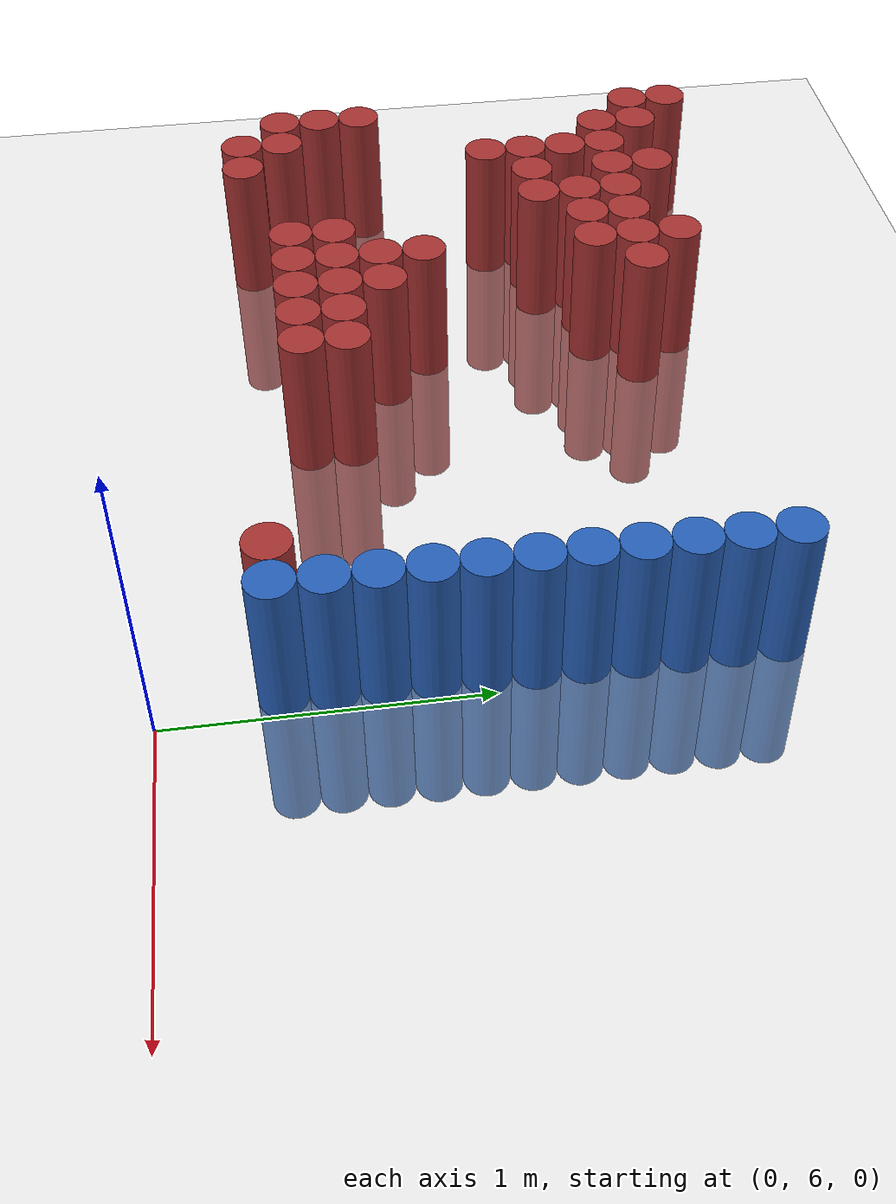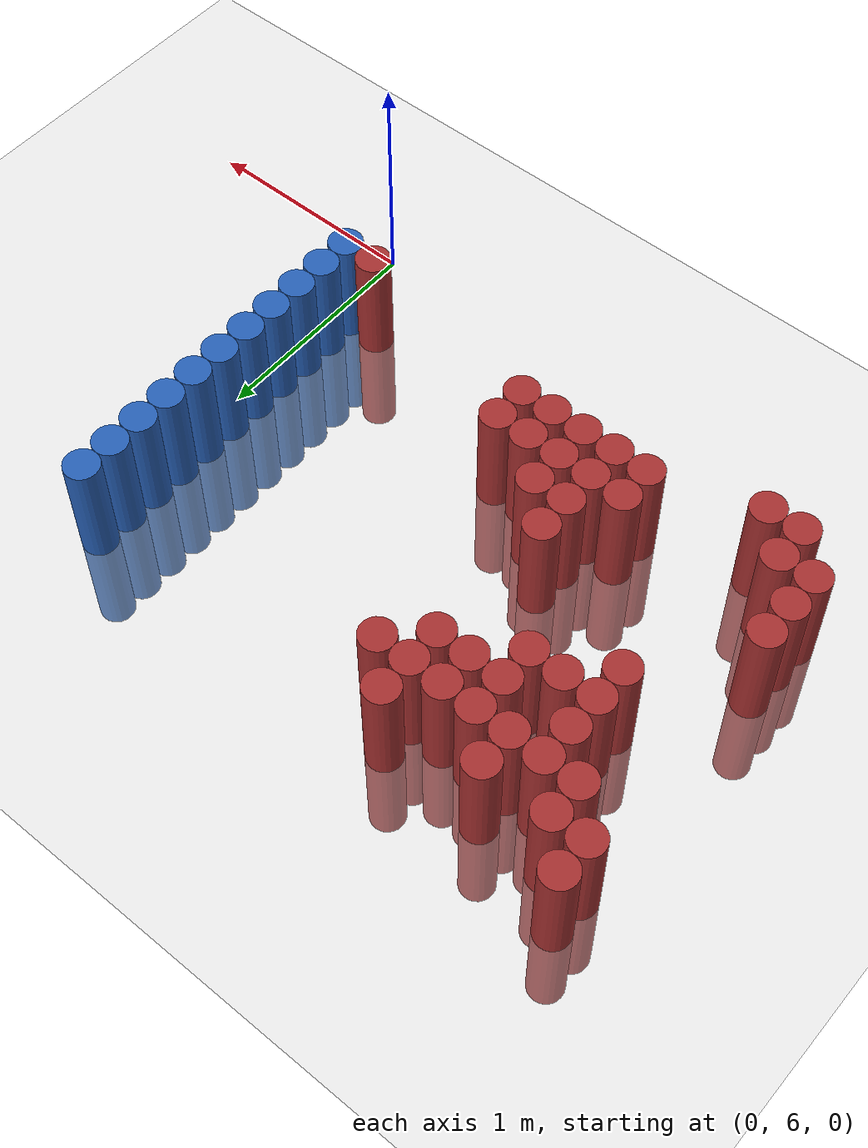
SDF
<sdf version="1.6">
 <world name="default">
  <model name="ground_plane">
   <static>1</static>
   <link name="link">
    <collision name="collision">
     <geometry><plane><normal>0 0 1</normal><size>100 100</size></plane></geometry>
     <surface><friction><ode><mu>100</mu><mu2>50</mu2></ode></friction></surface>
    </collision>
    <visual name="visual">
     <cast_shadows>0</cast_shadows>
     <geometry><plane><normal>0 0 1</normal><size>100 100</size></plane></geometry>
     <material>
      <script><uri>file://media/materials/scripts/gazebo.material</uri><name>Gazebo/Grey</name></script>
     </material>
    </visual>
   </link>
  </model>
  <model name="unit_cylinder_236">
   <static>1</static>
   <pose>-2.475000 6.525000 0.000000 0.000000 0.000000 0.000000</pose>
   <link name="link">
    <inertial>
     <mass>1</mass>
     <inertia><ixx>0.145833</ixx><ixy>0</ixy><ixz>0</ixz><iyy>0.145833</iyy><iyz>0</iyz><izz>0.125</izz></inertia>
    </inertial>
    <collision name="collision">
     <geometry><cylinder><radius>0.075000</radius><length>1</length></cylinder></geometry>
    </collision>
    <visual name="visual">
     <geometry><cylinder><radius>0.075000</radius><length>1</length></cylinder></geometry>
     <material>
      <ambient>0.648000 0.192000 0.192000 1</ambient>
      <diffuse>0.648000 0.192000 0.192000 1</diffuse>
     </material>
     <material>
      <script><name>Gazebo/Grey</name><uri>file://media/materials/scripts/gazebo.material</uri></script>
     </material>
    </visual>
   </link>
  </model>
  <model name="unit_cylinder_237">
   <static>1</static>
   <pose>-2.475000 6.675000 0.000000 0.000000 0.000000 0.000000</pose>
   <link name="link">
    <inertial>
     <mass>1</mass>
     <inertia><ixx>0.145833</ixx><ixy>0</ixy><ixz>0</ixz><iyy>0.145833</iyy><iyz>0</iyz><izz>0.125</izz></inertia>
    </inertial>
    <collision name="collision">
     <geometry><cylinder><radius>0.075000</radius><length>1</length></cylinder></geometry>
    </collision>
    <visual name="visual">
     <geometry><cylinder><radius>0.075000</radius><length>1</length></cylinder></geometry>
     <material>
      <ambient>0.648000 0.192000 0.192000 1</ambient>
      <diffuse>0.648000 0.192000 0.192000 1</diffuse>
     </material>
     <material>
      <script><name>Gazebo/Grey</name><uri>file://media/materials/scripts/gazebo.material</uri></script>
     </material>
    </visual>
   </link>
  </model>
  <model name="unit_cylinder_238">
   <static>1</static>
   <pose>-2.475000 6.825000 0.000000 0.000000 0.000000 0.000000</pose>
   <link name="link">
    <inertial>
     <mass>1</mass>
     <inertia><ixx>0.145833</ixx><ixy>0</ixy><ixz>0</ixz><iyy>0.145833</iyy><iyz>0</iyz><izz>0.125</izz></inertia>
    </inertial>
    <collision name="collision">
     <geometry><cylinder><radius>0.075000</radius><length>1</length></cylinder></geometry>
    </collision>
    <visual name="visual">
     <geometry><cylinder><radius>0.075000</radius><length>1</length></cylinder></geometry>
     <material>
      <ambient>0.648000 0.192000 0.192000 1</ambient>
      <diffuse>0.648000 0.192000 0.192000 1</diffuse>
     </material>
     <material>
      <script><name>Gazebo/Grey</name><uri>file://media/materials/scripts/gazebo.material</uri></script>
     </material>
    </visual>
   </link>
  </model>
  <model name="unit_cylinder_239">
   <static>1</static>
   <pose>-2.475000 7.875000 0.000000 0.000000 0.000000 0.000000</pose>
   <link name="link">
    <inertial>
     <mass>1</mass>
     <inertia><ixx>0.145833</ixx><ixy>0</ixy><ixz>0</ixz><iyy>0.145833</iyy><iyz>0</iyz><izz>0.125</izz></inertia>
    </inertial>
    <collision name="collision">
     <geometry><cylinder><radius>0.075000</radius><length>1</length></cylinder></geometry>
    </collision>
    <visual name="visual">
     <geometry><cylinder><radius>0.075000</radius><length>1</length></cylinder></geometry>
     <material>
      <ambient>0.648000 0.192000 0.192000 1</ambient>
      <diffuse>0.648000 0.192000 0.192000 1</diffuse>
     </material>
     <material>
      <script><name>Gazebo/Grey</name><uri>file://media/materials/scripts/gazebo.material</uri></script>
     </material>
    </visual>
   </link>
  </model>
  <model name="unit_cylinder_240">
   <static>1</static>
   <pose>-2.475000 8.025000 0.000000 0.000000 0.000000 0.000000</pose>
   <link name="link">
    <inertial>
     <mass>1</mass>
     <inertia><ixx>0.145833</ixx><ixy>0</ixy><ixz>0</ixz><iyy>0.145833</iyy><iyz>0</iyz><izz>0.125</izz></inertia>
    </inertial>
    <collision name="collision">
     <geometry><cylinder><radius>0.075000</radius><length>1</length></cylinder></geometry>
    </collision>
    <visual name="visual">
     <geometry><cylinder><radius>0.075000</radius><length>1</length></cylinder></geometry>
     <material>
      <ambient>0.648000 0.192000 0.192000 1</ambient>
      <diffuse>0.648000 0.192000 0.192000 1</diffuse>
     </material>
     <material>
      <script><name>Gazebo/Grey</name><uri>file://media/materials/scripts/gazebo.material</uri></script>
     </material>
    </visual>
   </link>
  </model>
  <model name="unit_cylinder_249">
   <static>1</static>
   <pose>-2.325000 6.375000 0.000000 0.000000 0.000000 0.000000</pose>
   <link name="link">
    <inertial>
     <mass>1</mass>
     <inertia><ixx>0.145833</ixx><ixy>0</ixy><ixz>0</ixz><iyy>0.145833</iyy><iyz>0</iyz><izz>0.125</izz></inertia>
    </inertial>
    <collision name="collision">
     <geometry><cylinder><radius>0.075000</radius><length>1</length></cylinder></geometry>
    </collision>
    <visual name="visual">
     <geometry><cylinder><radius>0.075000</radius><length>1</length></cylinder></geometry>
     <material>
      <ambient>0.648000 0.192000 0.192000 1</ambient>
      <diffuse>0.648000 0.192000 0.192000 1</diffuse>
     </material>
     <material>
      <script><name>Gazebo/Grey</name><uri>file://media/materials/scripts/gazebo.material</uri></script>
     </material>
    </visual>
   </link>
  </model>
  <model name="unit_cylinder_250">
   <static>1</static>
   <pose>-2.325000 6.525000 0.000000 0.000000 0.000000 0.000000</pose>
   <link name="link">
    <inertial>
     <mass>1</mass>
     <inertia><ixx>0.145833</ixx><ixy>0</ixy><ixz>0</ixz><iyy>0.145833</iyy><iyz>0</iyz><izz>0.125</izz></inertia>
    </inertial>
    <collision name="collision">
     <geometry><cylinder><radius>0.075000</radius><length>1</length></cylinder></geometry>
    </collision>
    <visual name="visual">
     <geometry><cylinder><radius>0.075000</radius><length>1</length></cylinder></geometry>
     <material>
      <ambient>0.648000 0.192000 0.192000 1</ambient>
      <diffuse>0.648000 0.192000 0.192000 1</diffuse>
     </material>
     <material>
      <script><name>Gazebo/Grey</name><uri>file://media/materials/scripts/gazebo.material</uri></script>
     </material>
    </visual>
   </link>
  </model>
  <model name="unit_cylinder_251">
   <static>1</static>
   <pose>-2.325000 7.725000 0.000000 0.000000 0.000000 0.000000</pose>
   <link name="link">
    <inertial>
     <mass>1</mass>
     <inertia><ixx>0.145833</ixx><ixy>0</ixy><ixz>0</ixz><iyy>0.145833</iyy><iyz>0</iyz><izz>0.125</izz></inertia>
    </inertial>
    <collision name="collision">
     <geometry><cylinder><radius>0.075000</radius><length>1</length></cylinder></geometry>
    </collision>
    <visual name="visual">
     <geometry><cylinder><radius>0.075000</radius><length>1</length></cylinder></geometry>
     <material>
      <ambient>0.648000 0.192000 0.192000 1</ambient>
      <diffuse>0.648000 0.192000 0.192000 1</diffuse>
     </material>
     <material>
      <script><name>Gazebo/Grey</name><uri>file://media/materials/scripts/gazebo.material</uri></script>
     </material>
    </visual>
   </link>
  </model>
  <model name="unit_cylinder_252">
   <static>1</static>
   <pose>-2.325000 7.875000 0.000000 0.000000 0.000000 0.000000</pose>
   <link name="link">
    <inertial>
     <mass>1</mass>
     <inertia><ixx>0.145833</ixx><ixy>0</ixy><ixz>0</ixz><iyy>0.145833</iyy><iyz>0</iyz><izz>0.125</izz></inertia>
    </inertial>
    <collision name="collision">
     <geometry><cylinder><radius>0.075000</radius><length>1</length></cylinder></geometry>
    </collision>
    <visual name="visual">
     <geometry><cylinder><radius>0.075000</radius><length>1</length></cylinder></geometry>
     <material>
      <ambient>0.648000 0.192000 0.192000 1</ambient>
      <diffuse>0.648000 0.192000 0.192000 1</diffuse>
     </material>
     <material>
      <script><name>Gazebo/Grey</name><uri>file://media/materials/scripts/gazebo.material</uri></script>
     </material>
    </visual>
   </link>
  </model>
  <model name="unit_cylinder_258">
   <static>1</static>
   <pose>-2.175000 6.375000 0.000000 0.000000 0.000000 0.000000</pose>
   <link name="link">
    <inertial>
     <mass>1</mass>
     <inertia><ixx>0.145833</ixx><ixy>0</ixy><ixz>0</ixz><iyy>0.145833</iyy><iyz>0</iyz><izz>0.125</izz></inertia>
    </inertial>
    <collision name="collision">
     <geometry><cylinder><radius>0.075000</radius><length>1</length></cylinder></geometry>
    </collision>
    <visual name="visual">
     <geometry><cylinder><radius>0.075000</radius><length>1</length></cylinder></geometry>
     <material>
      <ambient>0.648000 0.192000 0.192000 1</ambient>
      <diffuse>0.648000 0.192000 0.192000 1</diffuse>
     </material>
     <material>
      <script><name>Gazebo/Grey</name><uri>file://media/materials/scripts/gazebo.material</uri></script>
     </material>
    </visual>
   </link>
  </model>
  <model name="unit_cylinder_259">
   <static>1</static>
   <pose>-2.175000 7.275000 0.000000 0.000000 0.000000 0.000000</pose>
   <link name="link">
    <inertial>
     <mass>1</mass>
     <inertia><ixx>0.145833</ixx><ixy>0</ixy><ixz>0</ixz><iyy>0.145833</iyy><iyz>0</iyz><izz>0.125</izz></inertia>
    </inertial>
    <collision name="collision">
     <geometry><cylinder><radius>0.075000</radius><length>1</length></cylinder></geometry>
    </collision>
    <visual name="visual">
     <geometry><cylinder><radius>0.075000</radius><length>1</length></cylinder></geometry>
     <material>
      <ambient>0.648000 0.192000 0.192000 1</ambient>
      <diffuse>0.648000 0.192000 0.192000 1</diffuse>
     </material>
     <material>
      <script><name>Gazebo/Grey</name><uri>file://media/materials/scripts/gazebo.material</uri></script>
     </material>
    </visual>
   </link>
  </model>
  <model name="unit_cylinder_260">
   <static>1</static>
   <pose>-2.175000 7.425000 0.000000 0.000000 0.000000 0.000000</pose>
   <link name="link">
    <inertial>
     <mass>1</mass>
     <inertia><ixx>0.145833</ixx><ixy>0</ixy><ixz>0</ixz><iyy>0.145833</iyy><iyz>0</iyz><izz>0.125</izz></inertia>
    </inertial>
    <collision name="collision">
     <geometry><cylinder><radius>0.075000</radius><length>1</length></cylinder></geometry>
    </collision>
    <visual name="visual">
     <geometry><cylinder><radius>0.075000</radius><length>1</length></cylinder></geometry>
     <material>
      <ambient>0.648000 0.192000 0.192000 1</ambient>
      <diffuse>0.648000 0.192000 0.192000 1</diffuse>
     </material>
     <material>
      <script><name>Gazebo/Grey</name><uri>file://media/materials/scripts/gazebo.material</uri></script>
     </material>
    </visual>
   </link>
  </model>
  <model name="unit_cylinder_261">
   <static>1</static>
   <pose>-2.175000 7.575000 0.000000 0.000000 0.000000 0.000000</pose>
   <link name="link">
    <inertial>
     <mass>1</mass>
     <inertia><ixx>0.145833</ixx><ixy>0</ixy><ixz>0</ixz><iyy>0.145833</iyy><iyz>0</iyz><izz>0.125</izz></inertia>
    </inertial>
    <collision name="collision">
     <geometry><cylinder><radius>0.075000</radius><length>1</length></cylinder></geometry>
    </collision>
    <visual name="visual">
     <geometry><cylinder><radius>0.075000</radius><length>1</length></cylinder></geometry>
     <material>
      <ambient>0.648000 0.192000 0.192000 1</ambient>
      <diffuse>0.648000 0.192000 0.192000 1</diffuse>
     </material>
     <material>
      <script><name>Gazebo/Grey</name><uri>file://media/materials/scripts/gazebo.material</uri></script>
     </material>
    </visual>
   </link>
  </model>
  <model name="unit_cylinder_262">
   <static>1</static>
   <pose>-2.175000 7.725000 0.000000 0.000000 0.000000 0.000000</pose>
   <link name="link">
    <inertial>
     <mass>1</mass>
     <inertia><ixx>0.145833</ixx><ixy>0</ixy><ixz>0</ixz><iyy>0.145833</iyy><iyz>0</iyz><izz>0.125</izz></inertia>
    </inertial>
    <collision name="collision">
     <geometry><cylinder><radius>0.075000</radius><length>1</length></cylinder></geometry>
    </collision>
    <visual name="visual">
     <geometry><cylinder><radius>0.075000</radius><length>1</length></cylinder></geometry>
     <material>
      <ambient>0.648000 0.192000 0.192000 1</ambient>
      <diffuse>0.648000 0.192000 0.192000 1</diffuse>
     </material>
     <material>
      <script><name>Gazebo/Grey</name><uri>file://media/materials/scripts/gazebo.material</uri></script>
     </material>
    </visual>
   </link>
  </model>
  <model name="unit_cylinder_266">
   <static>1</static>
   <pose>-2.025000 7.425000 0.000000 0.000000 0.000000 0.000000</pose>
   <link name="link">
    <inertial>
     <mass>1</mass>
     <inertia><ixx>0.145833</ixx><ixy>0</ixy><ixz>0</ixz><iyy>0.145833</iyy><iyz>0</iyz><izz>0.125</izz></inertia>
    </inertial>
    <collision name="collision">
     <geometry><cylinder><radius>0.075000</radius><length>1</length></cylinder></geometry>
    </collision>
    <visual name="visual">
     <geometry><cylinder><radius>0.075000</radius><length>1</length></cylinder></geometry>
     <material>
      <ambient>0.648000 0.192000 0.192000 1</ambient>
      <diffuse>0.648000 0.192000 0.192000 1</diffuse>
     </material>
     <material>
      <script><name>Gazebo/Grey</name><uri>file://media/materials/scripts/gazebo.material</uri></script>
     </material>
    </visual>
   </link>
  </model>
  <model name="unit_cylinder_267">
   <static>1</static>
   <pose>-2.025000 7.725000 0.000000 0.000000 0.000000 0.000000</pose>
   <link name="link">
    <inertial>
     <mass>1</mass>
     <inertia><ixx>0.145833</ixx><ixy>0</ixy><ixz>0</ixz><iyy>0.145833</iyy><iyz>0</iyz><izz>0.125</izz></inertia>
    </inertial>
    <collision name="collision">
     <geometry><cylinder><radius>0.075000</radius><length>1</length></cylinder></geometry>
    </collision>
    <visual name="visual">
     <geometry><cylinder><radius>0.075000</radius><length>1</length></cylinder></geometry>
     <material>
      <ambient>0.648000 0.192000 0.192000 1</ambient>
      <diffuse>0.648000 0.192000 0.192000 1</diffuse>
     </material>
     <material>
      <script><name>Gazebo/Grey</name><uri>file://media/materials/scripts/gazebo.material</uri></script>
     </material>
    </visual>
   </link>
  </model>
  <model name="unit_cylinder_268">
   <static>1</static>
   <pose>-2.025000 7.875000 0.000000 0.000000 0.000000 0.000000</pose>
   <link name="link">
    <inertial>
     <mass>1</mass>
     <inertia><ixx>0.145833</ixx><ixy>0</ixy><ixz>0</ixz><iyy>0.145833</iyy><iyz>0</iyz><izz>0.125</izz></inertia>
    </inertial>
    <collision name="collision">
     <geometry><cylinder><radius>0.075000</radius><length>1</length></cylinder></geometry>
    </collision>
    <visual name="visual">
     <geometry><cylinder><radius>0.075000</radius><length>1</length></cylinder></geometry>
     <material>
      <ambient>0.648000 0.192000 0.192000 1</ambient>
      <diffuse>0.648000 0.192000 0.192000 1</diffuse>
     </material>
     <material>
      <script><name>Gazebo/Grey</name><uri>file://media/materials/scripts/gazebo.material</uri></script>
     </material>
    </visual>
   </link>
  </model>
  <model name="unit_cylinder_277">
   <static>1</static>
   <pose>-1.875000 7.425000 0.000000 0.000000 0.000000 0.000000</pose>
   <link name="link">
    <inertial>
     <mass>1</mass>
     <inertia><ixx>0.145833</ixx><ixy>0</ixy><ixz>0</ixz><iyy>0.145833</iyy><iyz>0</iyz><izz>0.125</izz></inertia>
    </inertial>
    <collision name="collision">
     <geometry><cylinder><radius>0.075000</radius><length>1</length></cylinder></geometry>
    </collision>
    <visual name="visual">
     <geometry><cylinder><radius>0.075000</radius><length>1</length></cylinder></geometry>
     <material>
      <ambient>0.648000 0.192000 0.192000 1</ambient>
      <diffuse>0.648000 0.192000 0.192000 1</diffuse>
     </material>
     <material>
      <script><name>Gazebo/Grey</name><uri>file://media/materials/scripts/gazebo.material</uri></script>
     </material>
    </visual>
   </link>
  </model>
  <model name="unit_cylinder_278">
   <static>1</static>
   <pose>-1.875000 7.575000 0.000000 0.000000 0.000000 0.000000</pose>
   <link name="link">
    <inertial>
     <mass>1</mass>
     <inertia><ixx>0.145833</ixx><ixy>0</ixy><ixz>0</ixz><iyy>0.145833</iyy><iyz>0</iyz><izz>0.125</izz></inertia>
    </inertial>
    <collision name="collision">
     <geometry><cylinder><radius>0.075000</radius><length>1</length></cylinder></geometry>
    </collision>
    <visual name="visual">
     <geometry><cylinder><radius>0.075000</radius><length>1</length></cylinder></geometry>
     <material>
      <ambient>0.648000 0.192000 0.192000 1</ambient>
      <diffuse>0.648000 0.192000 0.192000 1</diffuse>
     </material>
     <material>
      <script><name>Gazebo/Grey</name><uri>file://media/materials/scripts/gazebo.material</uri></script>
     </material>
    </visual>
   </link>
  </model>
  <model name="unit_cylinder_279">
   <static>1</static>
   <pose>-1.875000 7.725000 0.000000 0.000000 0.000000 0.000000</pose>
   <link name="link">
    <inertial>
     <mass>1</mass>
     <inertia><ixx>0.145833</ixx><ixy>0</ixy><ixz>0</ixz><iyy>0.145833</iyy><iyz>0</iyz><izz>0.125</izz></inertia>
    </inertial>
    <collision name="collision">
     <geometry><cylinder><radius>0.075000</radius><length>1</length></cylinder></geometry>
    </collision>
    <visual name="visual">
     <geometry><cylinder><radius>0.075000</radius><length>1</length></cylinder></geometry>
     <material>
      <ambient>0.648000 0.192000 0.192000 1</ambient>
      <diffuse>0.648000 0.192000 0.192000 1</diffuse>
     </material>
     <material>
      <script><name>Gazebo/Grey</name><uri>file://media/materials/scripts/gazebo.material</uri></script>
     </material>
    </visual>
   </link>
  </model>
  <model name="unit_cylinder_286">
   <static>1</static>
   <pose>-1.725000 6.525000 0.000000 0.000000 0.000000 0.000000</pose>
   <link name="link">
    <inertial>
     <mass>1</mass>
     <inertia><ixx>0.145833</ixx><ixy>0</ixy><ixz>0</ixz><iyy>0.145833</iyy><iyz>0</iyz><izz>0.125</izz></inertia>
    </inertial>
    <collision name="collision">
     <geometry><cylinder><radius>0.075000</radius><length>1</length></cylinder></geometry>
    </collision>
    <visual name="visual">
     <geometry><cylinder><radius>0.075000</radius><length>1</length></cylinder></geometry>
     <material>
      <ambient>0.648000 0.192000 0.192000 1</ambient>
      <diffuse>0.648000 0.192000 0.192000 1</diffuse>
     </material>
     <material>
      <script><name>Gazebo/Grey</name><uri>file://media/materials/scripts/gazebo.material</uri></script>
     </material>
    </visual>
   </link>
  </model>
  <model name="unit_cylinder_287">
   <static>1</static>
   <pose>-1.725000 6.675000 0.000000 0.000000 0.000000 0.000000</pose>
   <link name="link">
    <inertial>
     <mass>1</mass>
     <inertia><ixx>0.145833</ixx><ixy>0</ixy><ixz>0</ixz><iyy>0.145833</iyy><iyz>0</iyz><izz>0.125</izz></inertia>
    </inertial>
    <collision name="collision">
     <geometry><cylinder><radius>0.075000</radius><length>1</length></cylinder></geometry>
    </collision>
    <visual name="visual">
     <geometry><cylinder><radius>0.075000</radius><length>1</length></cylinder></geometry>
     <material>
      <ambient>0.648000 0.192000 0.192000 1</ambient>
      <diffuse>0.648000 0.192000 0.192000 1</diffuse>
     </material>
     <material>
      <script><name>Gazebo/Grey</name><uri>file://media/materials/scripts/gazebo.material</uri></script>
     </material>
    </visual>
   </link>
  </model>
  <model name="unit_cylinder_288">
   <static>1</static>
   <pose>-1.725000 7.575000 0.000000 0.000000 0.000000 0.000000</pose>
   <link name="link">
    <inertial>
     <mass>1</mass>
     <inertia><ixx>0.145833</ixx><ixy>0</ixy><ixz>0</ixz><iyy>0.145833</iyy><iyz>0</iyz><izz>0.125</izz></inertia>
    </inertial>
    <collision name="collision">
     <geometry><cylinder><radius>0.075000</radius><length>1</length></cylinder></geometry>
    </collision>
    <visual name="visual">
     <geometry><cylinder><radius>0.075000</radius><length>1</length></cylinder></geometry>
     <material>
      <ambient>0.648000 0.192000 0.192000 1</ambient>
      <diffuse>0.648000 0.192000 0.192000 1</diffuse>
     </material>
     <material>
      <script><name>Gazebo/Grey</name><uri>file://media/materials/scripts/gazebo.material</uri></script>
     </material>
    </visual>
   </link>
  </model>
  <model name="unit_cylinder_289">
   <static>1</static>
   <pose>-1.725000 7.725000 0.000000 0.000000 0.000000 0.000000</pose>
   <link name="link">
    <inertial>
     <mass>1</mass>
     <inertia><ixx>0.145833</ixx><ixy>0</ixy><ixz>0</ixz><iyy>0.145833</iyy><iyz>0</iyz><izz>0.125</izz></inertia>
    </inertial>
    <collision name="collision">
     <geometry><cylinder><radius>0.075000</radius><length>1</length></cylinder></geometry>
    </collision>
    <visual name="visual">
     <geometry><cylinder><radius>0.075000</radius><length>1</length></cylinder></geometry>
     <material>
      <ambient>0.648000 0.192000 0.192000 1</ambient>
      <diffuse>0.648000 0.192000 0.192000 1</diffuse>
     </material>
     <material>
      <script><name>Gazebo/Grey</name><uri>file://media/materials/scripts/gazebo.material</uri></script>
     </material>
    </visual>
   </link>
  </model>
  <model name="unit_cylinder_291">
   <static>1</static>
   <pose>-1.575000 6.525000 0.000000 0.000000 0.000000 0.000000</pose>
   <link name="link">
    <inertial>
     <mass>1</mass>
     <inertia><ixx>0.145833</ixx><ixy>0</ixy><ixz>0</ixz><iyy>0.145833</iyy><iyz>0</iyz><izz>0.125</izz></inertia>
    </inertial>
    <collision name="collision">
     <geometry><cylinder><radius>0.075000</radius><length>1</length></cylinder></geometry>
    </collision>
    <visual name="visual">
     <geometry><cylinder><radius>0.075000</radius><length>1</length></cylinder></geometry>
     <material>
      <ambient>0.648000 0.192000 0.192000 1</ambient>
      <diffuse>0.648000 0.192000 0.192000 1</diffuse>
     </material>
     <material>
      <script><name>Gazebo/Grey</name><uri>file://media/materials/scripts/gazebo.material</uri></script>
     </material>
    </visual>
   </link>
  </model>
  <model name="unit_cylinder_292">
   <static>1</static>
   <pose>-1.575000 6.675000 0.000000 0.000000 0.000000 0.000000</pose>
   <link name="link">
    <inertial>
     <mass>1</mass>
     <inertia><ixx>0.145833</ixx><ixy>0</ixy><ixz>0</ixz><iyy>0.145833</iyy><iyz>0</iyz><izz>0.125</izz></inertia>
    </inertial>
    <collision name="collision">
     <geometry><cylinder><radius>0.075000</radius><length>1</length></cylinder></geometry>
    </collision>
    <visual name="visual">
     <geometry><cylinder><radius>0.075000</radius><length>1</length></cylinder></geometry>
     <material>
      <ambient>0.648000 0.192000 0.192000 1</ambient>
      <diffuse>0.648000 0.192000 0.192000 1</diffuse>
     </material>
     <material>
      <script><name>Gazebo/Grey</name><uri>file://media/materials/scripts/gazebo.material</uri></script>
     </material>
    </visual>
   </link>
  </model>
  <model name="unit_cylinder_293">
   <static>1</static>
   <pose>-1.575000 6.825000 0.000000 0.000000 0.000000 0.000000</pose>
   <link name="link">
    <inertial>
     <mass>1</mass>
     <inertia><ixx>0.145833</ixx><ixy>0</ixy><ixz>0</ixz><iyy>0.145833</iyy><iyz>0</iyz><izz>0.125</izz></inertia>
    </inertial>
    <collision name="collision">
     <geometry><cylinder><radius>0.075000</radius><length>1</length></cylinder></geometry>
    </collision>
    <visual name="visual">
     <geometry><cylinder><radius>0.075000</radius><length>1</length></cylinder></geometry>
     <material>
      <ambient>0.648000 0.192000 0.192000 1</ambient>
      <diffuse>0.648000 0.192000 0.192000 1</diffuse>
     </material>
     <material>
      <script><name>Gazebo/Grey</name><uri>file://media/materials/scripts/gazebo.material</uri></script>
     </material>
    </visual>
   </link>
  </model>
  <model name="unit_cylinder_294">
   <static>1</static>
   <pose>-1.575000 6.975000 0.000000 0.000000 0.000000 0.000000</pose>
   <link name="link">
    <inertial>
     <mass>1</mass>
     <inertia><ixx>0.145833</ixx><ixy>0</ixy><ixz>0</ixz><iyy>0.145833</iyy><iyz>0</iyz><izz>0.125</izz></inertia>
    </inertial>
    <collision name="collision">
     <geometry><cylinder><radius>0.075000</radius><length>1</length></cylinder></geometry>
    </collision>
    <visual name="visual">
     <geometry><cylinder><radius>0.075000</radius><length>1</length></cylinder></geometry>
     <material>
      <ambient>0.648000 0.192000 0.192000 1</ambient>
      <diffuse>0.648000 0.192000 0.192000 1</diffuse>
     </material>
     <material>
      <script><name>Gazebo/Grey</name><uri>file://media/materials/scripts/gazebo.material</uri></script>
     </material>
    </visual>
   </link>
  </model>
  <model name="unit_cylinder_295">
   <static>1</static>
   <pose>-1.575000 7.575000 0.000000 0.000000 0.000000 0.000000</pose>
   <link name="link">
    <inertial>
     <mass>1</mass>
     <inertia><ixx>0.145833</ixx><ixy>0</ixy><ixz>0</ixz><iyy>0.145833</iyy><iyz>0</iyz><izz>0.125</izz></inertia>
    </inertial>
    <collision name="collision">
     <geometry><cylinder><radius>0.075000</radius><length>1</length></cylinder></geometry>
    </collision>
    <visual name="visual">
     <geometry><cylinder><radius>0.075000</radius><length>1</length></cylinder></geometry>
     <material>
      <ambient>0.648000 0.192000 0.192000 1</ambient>
      <diffuse>0.648000 0.192000 0.192000 1</diffuse>
     </material>
     <material>
      <script><name>Gazebo/Grey</name><uri>file://media/materials/scripts/gazebo.material</uri></script>
     </material>
    </visual>
   </link>
  </model>
  <model name="unit_cylinder_296">
   <static>1</static>
   <pose>-1.575000 7.725000 0.000000 0.000000 0.000000 0.000000</pose>
   <link name="link">
    <inertial>
     <mass>1</mass>
     <inertia><ixx>0.145833</ixx><ixy>0</ixy><ixz>0</ixz><iyy>0.145833</iyy><iyz>0</iyz><izz>0.125</izz></inertia>
    </inertial>
    <collision name="collision">
     <geometry><cylinder><radius>0.075000</radius><length>1</length></cylinder></geometry>
    </collision>
    <visual name="visual">
     <geometry><cylinder><radius>0.075000</radius><length>1</length></cylinder></geometry>
     <material>
      <ambient>0.648000 0.192000 0.192000 1</ambient>
      <diffuse>0.648000 0.192000 0.192000 1</diffuse>
     </material>
     <material>
      <script><name>Gazebo/Grey</name><uri>file://media/materials/scripts/gazebo.material</uri></script>
     </material>
    </visual>
   </link>
  </model>
  <model name="unit_cylinder_297">
   <static>1</static>
   <pose>-1.575000 7.875000 0.000000 0.000000 0.000000 0.000000</pose>
   <link name="link">
    <inertial>
     <mass>1</mass>
     <inertia><ixx>0.145833</ixx><ixy>0</ixy><ixz>0</ixz><iyy>0.145833</iyy><iyz>0</iyz><izz>0.125</izz></inertia>
    </inertial>
    <collision name="collision">
     <geometry><cylinder><radius>0.075000</radius><length>1</length></cylinder></geometry>
    </collision>
    <visual name="visual">
     <geometry><cylinder><radius>0.075000</radius><length>1</length></cylinder></geometry>
     <material>
      <ambient>0.648000 0.192000 0.192000 1</ambient>
      <diffuse>0.648000 0.192000 0.192000 1</diffuse>
     </material>
     <material>
      <script><name>Gazebo/Grey</name><uri>file://media/materials/scripts/gazebo.material</uri></script>
     </material>
    </visual>
   </link>
  </model>
  <model name="unit_cylinder_299">
   <static>1</static>
   <pose>-1.425000 6.525000 0.000000 0.000000 0.000000 0.000000</pose>
   <link name="link">
    <inertial>
     <mass>1</mass>
     <inertia><ixx>0.145833</ixx><ixy>0</ixy><ixz>0</ixz><iyy>0.145833</iyy><iyz>0</iyz><izz>0.125</izz></inertia>
    </inertial>
    <collision name="collision">
     <geometry><cylinder><radius>0.075000</radius><length>1</length></cylinder></geometry>
    </collision>
    <visual name="visual">
     <geometry><cylinder><radius>0.075000</radius><length>1</length></cylinder></geometry>
     <material>
      <ambient>0.648000 0.192000 0.192000 1</ambient>
      <diffuse>0.648000 0.192000 0.192000 1</diffuse>
     </material>
     <material>
      <script><name>Gazebo/Grey</name><uri>file://media/materials/scripts/gazebo.material</uri></script>
     </material>
    </visual>
   </link>
  </model>
  <model name="unit_cylinder_300">
   <static>1</static>
   <pose>-1.425000 6.675000 0.000000 0.000000 0.000000 0.000000</pose>
   <link name="link">
    <inertial>
     <mass>1</mass>
     <inertia><ixx>0.145833</ixx><ixy>0</ixy><ixz>0</ixz><iyy>0.145833</iyy><iyz>0</iyz><izz>0.125</izz></inertia>
    </inertial>
    <collision name="collision">
     <geometry><cylinder><radius>0.075000</radius><length>1</length></cylinder></geometry>
    </collision>
    <visual name="visual">
     <geometry><cylinder><radius>0.075000</radius><length>1</length></cylinder></geometry>
     <material>
      <ambient>0.648000 0.192000 0.192000 1</ambient>
      <diffuse>0.648000 0.192000 0.192000 1</diffuse>
     </material>
     <material>
      <script><name>Gazebo/Grey</name><uri>file://media/materials/scripts/gazebo.material</uri></script>
     </material>
    </visual>
   </link>
  </model>
  <model name="unit_cylinder_301">
   <static>1</static>
   <pose>-1.425000 6.825000 0.000000 0.000000 0.000000 0.000000</pose>
   <link name="link">
    <inertial>
     <mass>1</mass>
     <inertia><ixx>0.145833</ixx><ixy>0</ixy><ixz>0</ixz><iyy>0.145833</iyy><iyz>0</iyz><izz>0.125</izz></inertia>
    </inertial>
    <collision name="collision">
     <geometry><cylinder><radius>0.075000</radius><length>1</length></cylinder></geometry>
    </collision>
    <visual name="visual">
     <geometry><cylinder><radius>0.075000</radius><length>1</length></cylinder></geometry>
     <material>
      <ambient>0.648000 0.192000 0.192000 1</ambient>
      <diffuse>0.648000 0.192000 0.192000 1</diffuse>
     </material>
     <material>
      <script><name>Gazebo/Grey</name><uri>file://media/materials/scripts/gazebo.material</uri></script>
     </material>
    </visual>
   </link>
  </model>
  <model name="unit_cylinder_302">
   <static>1</static>
   <pose>-1.425000 7.725000 0.000000 0.000000 0.000000 0.000000</pose>
   <link name="link">
    <inertial>
     <mass>1</mass>
     <inertia><ixx>0.145833</ixx><ixy>0</ixy><ixz>0</ixz><iyy>0.145833</iyy><iyz>0</iyz><izz>0.125</izz></inertia>
    </inertial>
    <collision name="collision">
     <geometry><cylinder><radius>0.075000</radius><length>1</length></cylinder></geometry>
    </collision>
    <visual name="visual">
     <geometry><cylinder><radius>0.075000</radius><length>1</length></cylinder></geometry>
     <material>
      <ambient>0.648000 0.192000 0.192000 1</ambient>
      <diffuse>0.648000 0.192000 0.192000 1</diffuse>
     </material>
     <material>
      <script><name>Gazebo/Grey</name><uri>file://media/materials/scripts/gazebo.material</uri></script>
     </material>
    </visual>
   </link>
  </model>
  <model name="unit_cylinder_304">
   <static>1</static>
   <pose>-1.275000 6.525000 0.000000 0.000000 0.000000 0.000000</pose>
   <link name="link">
    <inertial>
     <mass>1</mass>
     <inertia><ixx>0.145833</ixx><ixy>0</ixy><ixz>0</ixz><iyy>0.145833</iyy><iyz>0</iyz><izz>0.125</izz></inertia>
    </inertial>
    <collision name="collision">
     <geometry><cylinder><radius>0.075000</radius><length>1</length></cylinder></geometry>
    </collision>
    <visual name="visual">
     <geometry><cylinder><radius>0.075000</radius><length>1</length></cylinder></geometry>
     <material>
      <ambient>0.648000 0.192000 0.192000 1</ambient>
      <diffuse>0.648000 0.192000 0.192000 1</diffuse>
     </material>
     <material>
      <script><name>Gazebo/Grey</name><uri>file://media/materials/scripts/gazebo.material</uri></script>
     </material>
    </visual>
   </link>
  </model>
  <model name="unit_cylinder_305">
   <static>1</static>
   <pose>-1.275000 6.675000 0.000000 0.000000 0.000000 0.000000</pose>
   <link name="link">
    <inertial>
     <mass>1</mass>
     <inertia><ixx>0.145833</ixx><ixy>0</ixy><ixz>0</ixz><iyy>0.145833</iyy><iyz>0</iyz><izz>0.125</izz></inertia>
    </inertial>
    <collision name="collision">
     <geometry><cylinder><radius>0.075000</radius><length>1</length></cylinder></geometry>
    </collision>
    <visual name="visual">
     <geometry><cylinder><radius>0.075000</radius><length>1</length></cylinder></geometry>
     <material>
      <ambient>0.648000 0.192000 0.192000 1</ambient>
      <diffuse>0.648000 0.192000 0.192000 1</diffuse>
     </material>
     <material>
      <script><name>Gazebo/Grey</name><uri>file://media/materials/scripts/gazebo.material</uri></script>
     </material>
    </visual>
   </link>
  </model>
  <model name="unit_cylinder_306">
   <static>1</static>
   <pose>-1.125000 6.525000 0.000000 0.000000 0.000000 0.000000</pose>
   <link name="link">
    <inertial>
     <mass>1</mass>
     <inertia><ixx>0.145833</ixx><ixy>0</ixy><ixz>0</ixz><iyy>0.145833</iyy><iyz>0</iyz><izz>0.125</izz></inertia>
    </inertial>
    <collision name="collision">
     <geometry><cylinder><radius>0.075000</radius><length>1</length></cylinder></geometry>
    </collision>
    <visual name="visual">
     <geometry><cylinder><radius>0.075000</radius><length>1</length></cylinder></geometry>
     <material>
      <ambient>0.648000 0.192000 0.192000 1</ambient>
      <diffuse>0.648000 0.192000 0.192000 1</diffuse>
     </material>
     <material>
      <script><name>Gazebo/Grey</name><uri>file://media/materials/scripts/gazebo.material</uri></script>
     </material>
    </visual>
   </link>
  </model>
  <model name="unit_cylinder_307">
   <static>1</static>
   <pose>-1.125000 6.675000 0.000000 0.000000 0.000000 0.000000</pose>
   <link name="link">
    <inertial>
     <mass>1</mass>
     <inertia><ixx>0.145833</ixx><ixy>0</ixy><ixz>0</ixz><iyy>0.145833</iyy><iyz>0</iyz><izz>0.125</izz></inertia>
    </inertial>
    <collision name="collision">
     <geometry><cylinder><radius>0.075000</radius><length>1</length></cylinder></geometry>
    </collision>
    <visual name="visual">
     <geometry><cylinder><radius>0.075000</radius><length>1</length></cylinder></geometry>
     <material>
      <ambient>0.648000 0.192000 0.192000 1</ambient>
      <diffuse>0.648000 0.192000 0.192000 1</diffuse>
     </material>
     <material>
      <script><name>Gazebo/Grey</name><uri>file://media/materials/scripts/gazebo.material</uri></script>
     </material>
    </visual>
   </link>
  </model>
  <model name="unit_cylinder_322">
   <static>1</static>
   <pose>-0.225000 6.375000 0.000000 0.000000 0.000000 0.000000</pose>
   <link name="link">
    <inertial>
     <mass>1</mass>
     <inertia><ixx>0.145833</ixx><ixy>0</ixy><ixz>0</ixz><iyy>0.145833</iyy><iyz>0</iyz><izz>0.125</izz></inertia>
    </inertial>
    <collision name="collision">
     <geometry><cylinder><radius>0.075000</radius><length>1</length></cylinder></geometry>
    </collision>
    <visual name="visual">
     <geometry><cylinder><radius>0.075000</radius><length>1</length></cylinder></geometry>
     <material>
      <ambient>0.648000 0.192000 0.192000 1</ambient>
      <diffuse>0.648000 0.192000 0.192000 1</diffuse>
     </material>
     <material>
      <script><name>Gazebo/Grey</name><uri>file://media/materials/scripts/gazebo.material</uri></script>
     </material>
    </visual>
   </link>
  </model>
  <model name="unit_cylinder_335">
   <static>1</static>
   <pose>-0.075000 6.375000 0.000000 0.000000 0.000000 0.000000</pose>
   <link name="link">
    <inertial>
     <mass>1</mass>
     <inertia><ixx>0.145833</ixx><ixy>0</ixy><ixz>0</ixz><iyy>0.145833</iyy><iyz>0</iyz><izz>0.125</izz></inertia>
    </inertial>
    <collision name="collision">
     <geometry><cylinder><radius>0.075000</radius><length>1</length></cylinder></geometry>
    </collision>
    <visual name="visual">
     <geometry><cylinder><radius>0.075000</radius><length>1</length></cylinder></geometry>
     <material>
      <ambient>0.152000 0.379000 0.720000 1</ambient>
      <diffuse>0.152000 0.379000 0.720000 1</diffuse>
     </material>
     <material>
      <script><name>Gazebo/Grey</name><uri>file://media/materials/scripts/gazebo.material</uri></script>
     </material>
    </visual>
   </link>
  </model>
  <model name="unit_cylinder_336">
   <static>1</static>
   <pose>-0.075000 6.525000 0.000000 0.000000 0.000000 0.000000</pose>
   <link name="link">
    <inertial>
     <mass>1</mass>
     <inertia><ixx>0.145833</ixx><ixy>0</ixy><ixz>0</ixz><iyy>0.145833</iyy><iyz>0</iyz><izz>0.125</izz></inertia>
    </inertial>
    <collision name="collision">
     <geometry><cylinder><radius>0.075000</radius><length>1</length></cylinder></geometry>
    </collision>
    <visual name="visual">
     <geometry><cylinder><radius>0.075000</radius><length>1</length></cylinder></geometry>
     <material>
      <ambient>0.152000 0.379000 0.720000 1</ambient>
      <diffuse>0.152000 0.379000 0.720000 1</diffuse>
     </material>
     <material>
      <script><name>Gazebo/Grey</name><uri>file://media/materials/scripts/gazebo.material</uri></script>
     </material>
    </visual>
   </link>
  </model>
  <model name="unit_cylinder_337">
   <static>1</static>
   <pose>-0.075000 6.675000 0.000000 0.000000 0.000000 0.000000</pose>
   <link name="link">
    <inertial>
     <mass>1</mass>
     <inertia><ixx>0.145833</ixx><ixy>0</ixy><ixz>0</ixz><iyy>0.145833</iyy><iyz>0</iyz><izz>0.125</izz></inertia>
    </inertial>
    <collision name="collision">
     <geometry><cylinder><radius>0.075000</radius><length>1</length></cylinder></geometry>
    </collision>
    <visual name="visual">
     <geometry><cylinder><radius>0.075000</radius><length>1</length></cylinder></geometry>
     <material>
      <ambient>0.152000 0.379000 0.720000 1</ambient>
      <diffuse>0.152000 0.379000 0.720000 1</diffuse>
     </material>
     <material>
      <script><name>Gazebo/Grey</name><uri>file://media/materials/scripts/gazebo.material</uri></script>
     </material>
    </visual>
   </link>
  </model>
  <model name="unit_cylinder_338">
   <static>1</static>
   <pose>-0.075000 6.825000 0.000000 0.000000 0.000000 0.000000</pose>
   <link name="link">
    <inertial>
     <mass>1</mass>
     <inertia><ixx>0.145833</ixx><ixy>0</ixy><ixz>0</ixz><iyy>0.145833</iyy><iyz>0</iyz><izz>0.125</izz></inertia>
    </inertial>
    <collision name="collision">
     <geometry><cylinder><radius>0.075000</radius><length>1</length></cylinder></geometry>
    </collision>
    <visual name="visual">
     <geometry><cylinder><radius>0.075000</radius><length>1</length></cylinder></geometry>
     <material>
      <ambient>0.152000 0.379000 0.720000 1</ambient>
      <diffuse>0.152000 0.379000 0.720000 1</diffuse>
     </material>
     <material>
      <script><name>Gazebo/Grey</name><uri>file://media/materials/scripts/gazebo.material</uri></script>
     </material>
    </visual>
   </link>
  </model>
  <model name="unit_cylinder_339">
   <static>1</static>
   <pose>-0.075000 6.975000 0.000000 0.000000 0.000000 0.000000</pose>
   <link name="link">
    <inertial>
     <mass>1</mass>
     <inertia><ixx>0.145833</ixx><ixy>0</ixy><ixz>0</ixz><iyy>0.145833</iyy><iyz>0</iyz><izz>0.125</izz></inertia>
    </inertial>
    <collision name="collision">
     <geometry><cylinder><radius>0.075000</radius><length>1</length></cylinder></geometry>
    </collision>
    <visual name="visual">
     <geometry><cylinder><radius>0.075000</radius><length>1</length></cylinder></geometry>
     <material>
      <ambient>0.152000 0.379000 0.720000 1</ambient>
      <diffuse>0.152000 0.379000 0.720000 1</diffuse>
     </material>
     <material>
      <script><name>Gazebo/Grey</name><uri>file://media/materials/scripts/gazebo.material</uri></script>
     </material>
    </visual>
   </link>
  </model>
  <model name="unit_cylinder_340">
   <static>1</static>
   <pose>-0.075000 7.125000 0.000000 0.000000 0.000000 0.000000</pose>
   <link name="link">
    <inertial>
     <mass>1</mass>
     <inertia><ixx>0.145833</ixx><ixy>0</ixy><ixz>0</ixz><iyy>0.145833</iyy><iyz>0</iyz><izz>0.125</izz></inertia>
    </inertial>
    <collision name="collision">
     <geometry><cylinder><radius>0.075000</radius><length>1</length></cylinder></geometry>
    </collision>
    <visual name="visual">
     <geometry><cylinder><radius>0.075000</radius><length>1</length></cylinder></geometry>
     <material>
      <ambient>0.152000 0.379000 0.720000 1</ambient>
      <diffuse>0.152000 0.379000 0.720000 1</diffuse>
     </material>
     <material>
      <script><name>Gazebo/Grey</name><uri>file://media/materials/scripts/gazebo.material</uri></script>
     </material>
    </visual>
   </link>
  </model>
  <model name="unit_cylinder_341">
   <static>1</static>
   <pose>-0.075000 7.275000 0.000000 0.000000 0.000000 0.000000</pose>
   <link name="link">
    <inertial>
     <mass>1</mass>
     <inertia><ixx>0.145833</ixx><ixy>0</ixy><ixz>0</ixz><iyy>0.145833</iyy><iyz>0</iyz><izz>0.125</izz></inertia>
    </inertial>
    <collision name="collision">
     <geometry><cylinder><radius>0.075000</radius><length>1</length></cylinder></geometry>
    </collision>
    <visual name="visual">
     <geometry><cylinder><radius>0.075000</radius><length>1</length></cylinder></geometry>
     <material>
      <ambient>0.152000 0.379000 0.720000 1</ambient>
      <diffuse>0.152000 0.379000 0.720000 1</diffuse>
     </material>
     <material>
      <script><name>Gazebo/Grey</name><uri>file://media/materials/scripts/gazebo.material</uri></script>
     </material>
    </visual>
   </link>
  </model>
  <model name="unit_cylinder_342">
   <static>1</static>
   <pose>-0.075000 7.425000 0.000000 0.000000 0.000000 0.000000</pose>
   <link name="link">
    <inertial>
     <mass>1</mass>
     <inertia><ixx>0.145833</ixx><ixy>0</ixy><ixz>0</ixz><iyy>0.145833</iyy><iyz>0</iyz><izz>0.125</izz></inertia>
    </inertial>
    <collision name="collision">
     <geometry><cylinder><radius>0.075000</radius><length>1</length></cylinder></geometry>
    </collision>
    <visual name="visual">
     <geometry><cylinder><radius>0.075000</radius><length>1</length></cylinder></geometry>
     <material>
      <ambient>0.152000 0.379000 0.720000 1</ambient>
      <diffuse>0.152000 0.379000 0.720000 1</diffuse>
     </material>
     <material>
      <script><name>Gazebo/Grey</name><uri>file://media/materials/scripts/gazebo.material</uri></script>
     </material>
    </visual>
   </link>
  </model>
  <model name="unit_cylinder_343">
   <static>1</static>
   <pose>-0.075000 7.575000 0.000000 0.000000 0.000000 0.000000</pose>
   <link name="link">
    <inertial>
     <mass>1</mass>
     <inertia><ixx>0.145833</ixx><ixy>0</ixy><ixz>0</ixz><iyy>0.145833</iyy><iyz>0</iyz><izz>0.125</izz></inertia>
    </inertial>
    <collision name="collision">
     <geometry><cylinder><radius>0.075000</radius><length>1</length></cylinder></geometry>
    </collision>
    <visual name="visual">
     <geometry><cylinder><radius>0.075000</radius><length>1</length></cylinder></geometry>
     <material>
      <ambient>0.152000 0.379000 0.720000 1</ambient>
      <diffuse>0.152000 0.379000 0.720000 1</diffuse>
     </material>
     <material>
      <script><name>Gazebo/Grey</name><uri>file://media/materials/scripts/gazebo.material</uri></script>
     </material>
    </visual>
   </link>
  </model>
  <model name="unit_cylinder_344">
   <static>1</static>
   <pose>-0.075000 7.725000 0.000000 0.000000 0.000000 0.000000</pose>
   <link name="link">
    <inertial>
     <mass>1</mass>
     <inertia><ixx>0.145833</ixx><ixy>0</ixy><ixz>0</ixz><iyy>0.145833</iyy><iyz>0</iyz><izz>0.125</izz></inertia>
    </inertial>
    <collision name="collision">
     <geometry><cylinder><radius>0.075000</radius><length>1</length></cylinder></geometry>
    </collision>
    <visual name="visual">
     <geometry><cylinder><radius>0.075000</radius><length>1</length></cylinder></geometry>
     <material>
      <ambient>0.152000 0.379000 0.720000 1</ambient>
      <diffuse>0.152000 0.379000 0.720000 1</diffuse>
     </material>
     <material>
      <script><name>Gazebo/Grey</name><uri>file://media/materials/scripts/gazebo.material</uri></script>
     </material>
    </visual>
   </link>
  </model>
  <model name="unit_cylinder_345">
   <static>1</static>
   <pose>-0.075000 7.875000 0.000000 0.000000 0.000000 0.000000</pose>
   <link name="link">
    <inertial>
     <mass>1</mass>
     <inertia><ixx>0.145833</ixx><ixy>0</ixy><ixz>0</ixz><iyy>0.145833</iyy><iyz>0</iyz><izz>0.125</izz></inertia>
    </inertial>
    <collision name="collision">
     <geometry><cylinder><radius>0.075000</radius><length>1</length></cylinder></geometry>
    </collision>
    <visual name="visual">
     <geometry><cylinder><radius>0.075000</radius><length>1</length></cylinder></geometry>
     <material>
      <ambient>0.152000 0.379000 0.720000 1</ambient>
      <diffuse>0.152000 0.379000 0.720000 1</diffuse>
     </material>
     <material>
      <script><name>Gazebo/Grey</name><uri>file://media/materials/scripts/gazebo.material</uri></script>
     </material>
    </visual>
   </link>
  </model>
 </world>
</sdf>
